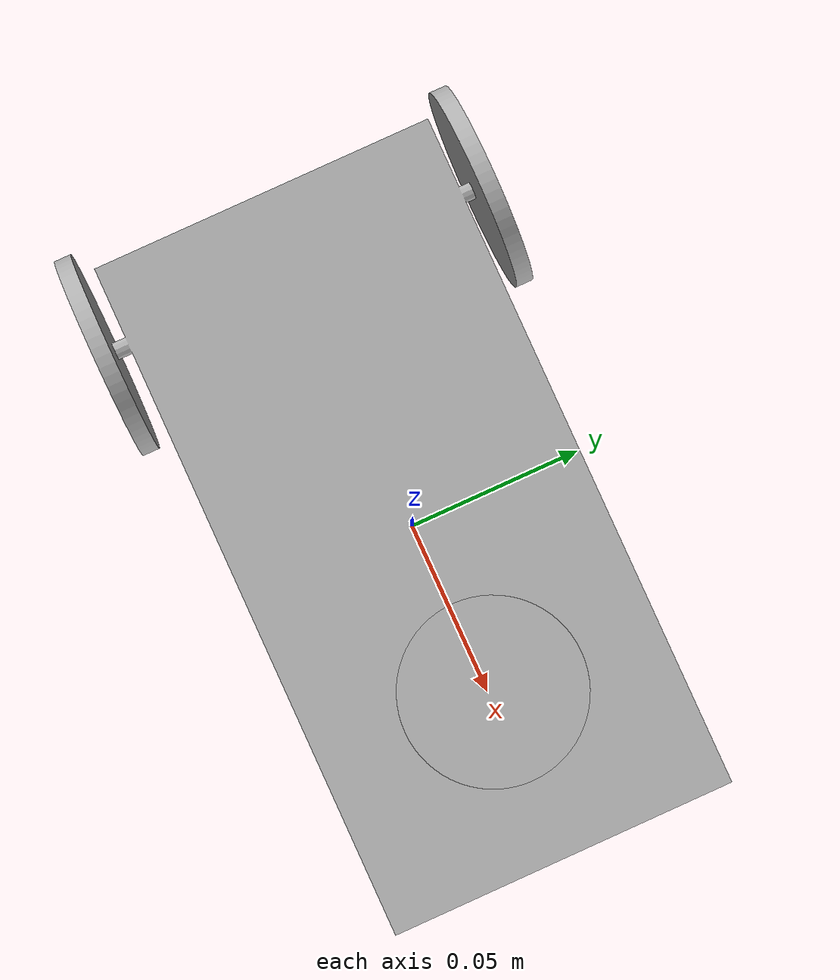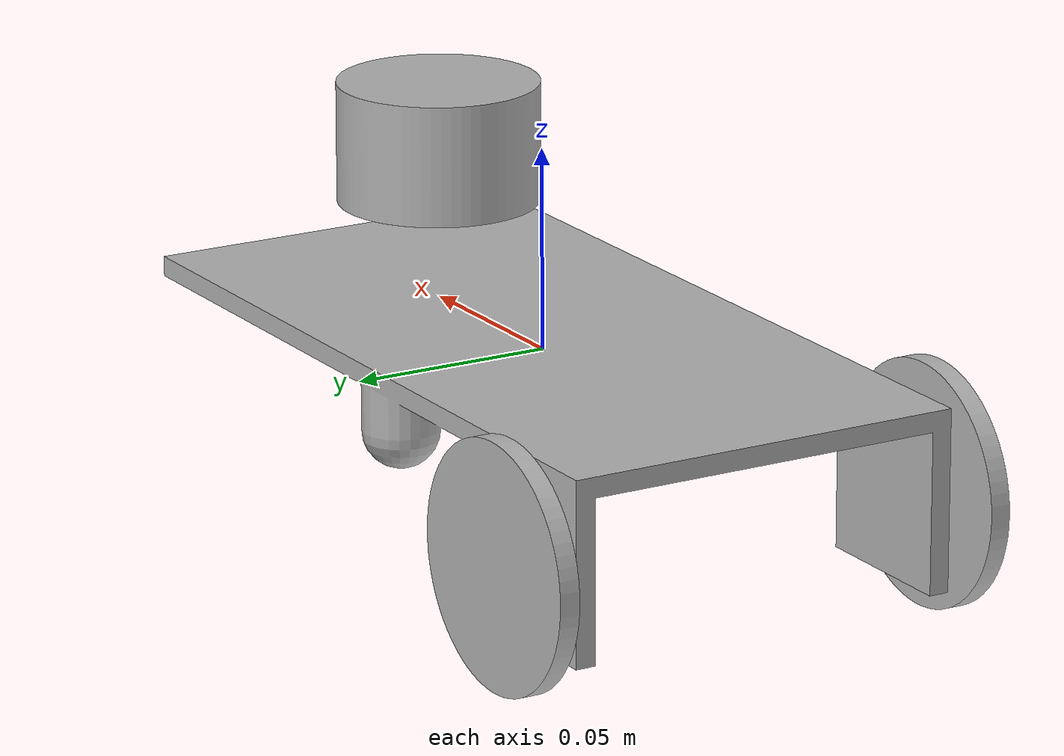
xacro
<?xml version="1.0" ?>
<robot name="fusionbot" xmlns:xacro="http://www.ros.org/wiki/xacro">

<xacro:include filename="$(find test_description)/urdf/materials.xacro" />
<xacro:include filename="$(find test_description)/urdf/fusionbot.gazebo" />

<link name='base_footprint' />

<link name="base_link">
  <inertial>
    <origin rpy="0 0 0" xyz="0.0038631391370923516 -1.6603718341471133e-17 0.05277089743549162"/>
    <mass value="2.3225264704023765"/>
    <inertia ixx="0.00792" ixy="-0.0" ixz="-0.000339" iyy="0.008432" iyz="-0.0" izz="0.014814"/>
  </inertial>
  <visual>
    <origin rpy="0 0 0" xyz="0 0 0"/>
    <geometry>
      <mesh filename="$(find test_description)/meshes/base_link.stl" scale="0.001 0.001 0.001"/>
    </geometry>
    <material name="silver"/>
  </visual>
  <collision>
    <origin rpy="0 0 0" xyz="0 0 0"/>
    <geometry>
      <mesh filename="$(find test_description)/meshes/base_link.stl" scale="0.001 0.001 0.001"/>
    </geometry>
  </collision>
</link>

<link name="lidar_1">
  <inertial>
    <origin rpy="0 0 0" xyz="0.0 5.584513020951031e-18 0.012499999999999997"/>
    <mass value="0.10789485809488784"/>
    <inertia ixx="4.1e-05" ixy="0.0" ixz="0.0" iyy="4.1e-05" iyz="-0.0" izz="7e-05"/>
  </inertial>
  <visual>
    <origin rpy="0 0 0" xyz="-0.05 -0.0 -0.11"/>
    <geometry>
      <mesh filename="$(find test_description)/meshes/lidar_1.stl" scale="0.001 0.001 0.001"/>
    </geometry>
    <material name="silver"/>
  </visual>
  <collision>
    <origin rpy="0 0 0" xyz="-0.05 -0.0 -0.11"/>
    <geometry>
      <mesh filename="$(find test_description)/meshes/lidar_1.stl" scale="0.001 0.001 0.001"/>
    </geometry>
  </collision>
</link>

<link name="right_wheel_1">
  <inertial>
    <origin rpy="0 0 0" xyz="-1.7370069300366088e-17 -0.012499999999999997 3.7252903539730653e-10"/>
    <mass value="0.1826050729899067"/>
    <inertia ixx="0.000124" ixy="0.0" ixz="-0.0" iyy="0.000228" iyz="-0.0" izz="0.000124"/>
  </inertial>
  <visual>
    <origin rpy="0 0 0" xyz="-0.0 0.1 -0.05"/>
    <geometry>
      <mesh filename="$(find test_description)/meshes/right_wheel_1.stl" scale="0.001 0.001 0.001"/>
    </geometry>
    <material name="silver"/>
  </visual>
  <collision>
    <origin rpy="0 0 0" xyz="-0.0 0.1 -0.05"/>
    <geometry>
      <mesh filename="$(find test_description)/meshes/right_wheel_1.stl" scale="0.001 0.001 0.001"/>
    </geometry>
  </collision>
</link>

<link name="left_wheel_1">
  <inertial>
    <origin rpy="0 0 0" xyz="-1.7370069300366088e-17 0.012499999999999997 3.7252903539730653e-10"/>
    <mass value="0.1826050729899067"/>
    <inertia ixx="0.000124" ixy="0.0" ixz="-0.0" iyy="0.000228" iyz="0.0" izz="0.000124"/>
  </inertial>
  <visual>
    <origin rpy="0 0 0" xyz="-0.0 -0.1 -0.05"/>
    <geometry>
      <mesh filename="$(find test_description)/meshes/left_wheel_1.stl" scale="0.001 0.001 0.001"/>
    </geometry>
    <material name="silver"/>
  </visual>
  <collision>
    <origin rpy="0 0 0" xyz="-0.0 -0.1 -0.05"/>
    <geometry>
      <mesh filename="$(find test_description)/meshes/left_wheel_1.stl" scale="0.001 0.001 0.001"/>
    </geometry>
  </collision>
</link>

<link name="lidar_3d">
  <pose>0 0 0 0 0 0</pose>
</link>

<link name="imu_link">
  <pose>0 0 0 0 0 0</pose>
</link>

<link name="camera_link">
  <pose>0 0 0 0 0 0</pose>
</link>

<link name="depth_camera_link">
  <pose>0 0 0 0 0 0</pose>
</link>

<link name="depth_camera_optical_link">
  <pose>0 0 0 0 0 0</pose>
</link>

<link name="gps_link">
  <pose>0 0 0 0 0 0</pose>
</link>

<joint name="imu_joint" type="fixed">
  <origin rpy="0 0 0" xyz="0.0 0.0 0.05" />
  <parent link="base_link" />
  <child link="imu_link" />
  <axis xyz="0.0 0.0 0.0" />
</joint>

<joint name="camera_joint" type="fixed">
  <origin rpy="0 0 0" xyz="0.1 0.0 0.05" />
  <parent link="base_link" />
  <child link="camera_link" />
  <axis xyz="0.0 0.0 0.0" />
</joint>

<joint name="depth_camera_joint" type="fixed">
  <origin rpy="0 0 0" xyz="0.1 0.0 0.05" />
  <parent link="base_link" />
  <child link="depth_camera_link" />
  <axis xyz="0.0 0.0 0.0" />
</joint>

<joint name="depth_camera_optical_joint" type="fixed">
  <origin rpy="-1.57079632679 0 -1.57079632679" xyz="0 0 0" />
  <parent link="depth_camera_link" />
  <child link="depth_camera_optical_link" />
  <axis xyz="0.0 0.0 0.0" />
</joint>

<joint name="gps_joint" type="fixed">
  <origin rpy="0 0 0" xyz="0.0 0.0 0.05" />
  <parent link="base_link" />
  <child link="gps_link" />
  <axis xyz="0.0 0.0 0.0" />
</joint>

<joint name='base_link_joint' type='fixed'>
  <origin rpy="0 0 0" xyz="0 0 0" />
  <parent link="base_footprint" />
  <child link="base_link" />
</joint>

<joint name="lidar_joint" type="fixed">
  <origin rpy="0 0 0" xyz="0.05 0.0 0.11"/>
  <parent link="base_link"/>
  <child link="lidar_1"/>
</joint>

<joint name="lidar_3d_joint" type="fixed">
  <origin rpy="0 0 0" xyz="0.05 0.0 0.11"/>
  <parent link="lidar_1"/>
  <child link="lidar_3d"/>
</joint>

<joint name="right_wheel_joint" type="continuous">
  <origin rpy="0 0 0" xyz="0.0 -0.1 0.05"/>
  <parent link="base_link"/>
  <child link="right_wheel_1"/>
  <axis xyz="0.0 1.0 0.0"/>
</joint>

<joint name="left_wheel_joint" type="continuous">
  <origin rpy="0 0 0" xyz="0.0 0.1 0.05"/>
  <parent link="base_link"/>
  <child link="left_wheel_1"/>
  <axis xyz="0.0 1.0 0.0"/>
</joint>

</robot>

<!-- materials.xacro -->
<robot name="fusionbot" xmlns:xacro="http://www.ros.org/wiki/xacro">

  <material name="silver">
    <color rgba="0.700 0.700 0.700 1.000" />
  </material>
  <material name="white">
    <color rgba="1 1 1 0.6" />
  </material>
  <material name="black">
    <color rgba="0 0 0 0.7" />
  </material>
  <material name="red">
    <color rgba="1 0 0 1" />
  </material>
  <material name="blue">
    <color rgba="0 0 0.8 1"/>
  </material>

</robot>

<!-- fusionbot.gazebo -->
<robot name="fusionbot" xmlns:xacro="http://www.ros.org/wiki/xacro" >

<xacro:property name="body_color" value="Gazebo/Silver" />
<xacro:property name="lidar_color" value="Gazebo/Blue" />
<xacro:property name="wheel_color" value="Gazebo/Black" />

<gazebo>
  <plugin filename="libgazebo_ros_control.so" name="control"/>
</gazebo>

<xacro:include filename="$(find test_description)/urdf/sensor/camera.gazebo.xacro"/>
<xacro:include filename="$(find test_description)/urdf/sensor/rgb_d.gazebo.xacro"/>
<xacro:include filename="$(find test_description)/urdf/sensor/imu.gazebo.xacro"/>
<xacro:include filename="$(find test_description)/urdf/sensor/lidar_2d.gazebo.xacro"/>
<xacro:include filename="$(find test_description)/urdf/sensor/lidar_3d.gazebo.xacro"/>
<xacro:include filename="$(find test_description)/urdf/sensor/gps.gazebo.xacro"/>
<xacro:include filename="$(find test_description)/urdf/controller/controller.gazebo.xacro"/>

<gazebo reference="base_link">
  <material>${body_color}</material>
  <mu1>0.1</mu1>
  <mu2>0.1</mu2>
  <selfCollide>true</selfCollide>
  <gravity>true</gravity>
</gazebo>

<gazebo reference="lidar_1">
  <material>${lidar_color}</material>
  <mu1>0.2</mu1>
  <mu2>0.2</mu2>
  <selfCollide>true</selfCollide>
</gazebo>

<gazebo reference="right_wheel_1">
  <material>${wheel_color}</material>
  <mu1>100000</mu1>
  <mu2>100000</mu2>
  <selfCollide>true</selfCollide>
</gazebo>

<gazebo reference="left_wheel_1">
  <material>${wheel_color}</material>
  <mu1>100000</mu1>
  <mu2>100000</mu2>
  <selfCollide>true</selfCollide>
</gazebo>

</robot>
